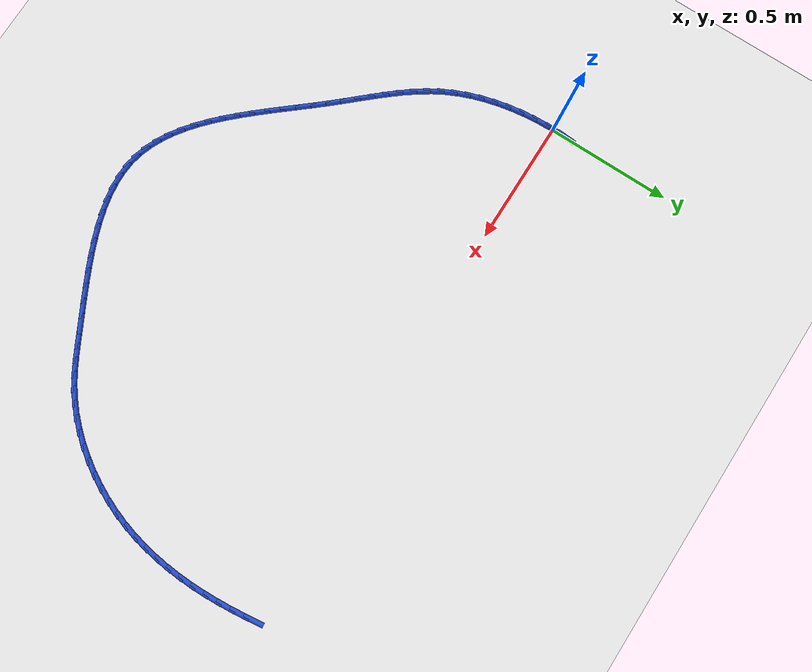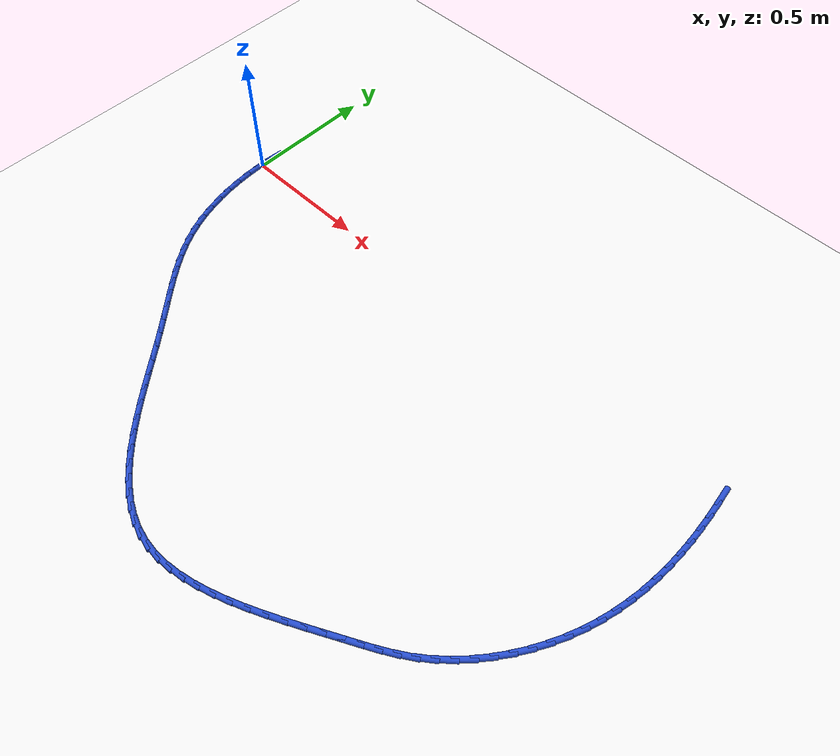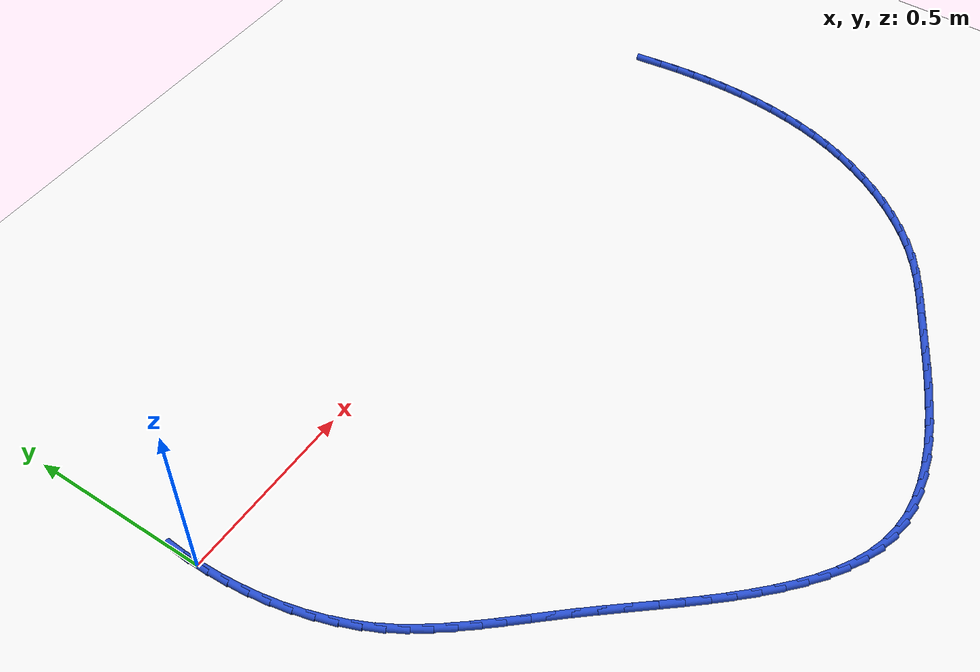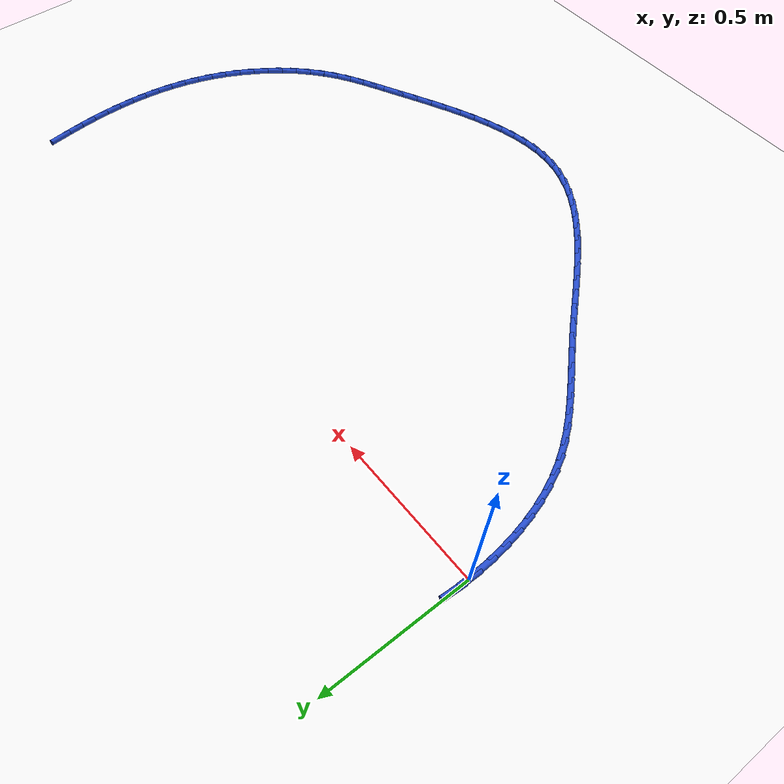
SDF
<sdf version="1.6">
 <world name="default">
  <model name="ground_plane">
   <static>1</static>
   <link name="link">
    <collision name="collision">
     <geometry><plane><normal>0 0 1</normal><size>100 100</size></plane></geometry>
     <surface><friction><ode><mu>100</mu><mu2>50</mu2></ode></friction></surface>
    </collision>
    <visual name="visual">
     <cast_shadows>0</cast_shadows>
     <geometry><plane><normal>0 0 1</normal><size>100 100</size></plane></geometry>
     <material>
      <script><uri>file://media/materials/scripts/gazebo.material</uri><name>Gazebo/WhiteGlow</name></script>
     </material>
    </visual>
   </link>
  </model>
  <model name="line">
   <link name="link_0">
    <pose>-3.122502256758253e-17 -1.1102230246251565e-16 0.01 0 1.57 1.5563504097494032</pose>
    <collision name="collision">
     <geometry><cylinder><radius>0.01</radius><length>0.08</length></cylinder></geometry>
    </collision>
    <visual name="visual">
     <material>
      <script><name>Gazebo/Blue</name><uri>file://media/materials/scripts/gazebo.material</uri></script>
     </material>
     <geometry><cylinder><radius>0.01</radius><length>0.08</length></cylinder></geometry>
    </visual>
   </link>
   <link name="link_1">
    <pose>0.0008178694669748708 0.05661202202502771 0.01 0 1.57 1.5072861251906564</pose>
    <collision name="collision">
     <geometry><cylinder><radius>0.01</radius><length>0.08</length></cylinder></geometry>
    </collision>
    <visual name="visual">
     <material>
      <script><name>Gazebo/Blue</name><uri>file://media/materials/scripts/gazebo.material</uri></script>
     </material>
     <geometry><cylinder><radius>0.01</radius><length>0.08</length></cylinder></geometry>
    </visual>
   </link>
   <link name="link_72">
    <pose>2.151646104769699 0.04974892645522249 0.01 0 1.57 -1.444014588436198</pose>
    <collision name="collision">
     <geometry><cylinder><radius>0.01</radius><length>0.08</length></cylinder></geometry>
    </collision>
    <visual name="visual">
     <material>
      <script><name>Gazebo/Blue</name><uri>file://media/materials/scripts/gazebo.material</uri></script>
     </material>
     <geometry><cylinder><radius>0.01</radius><length>0.08</length></cylinder></geometry>
    </visual>
   </link>
   <link name="link_73">
    <pose>2.1587093072180403 -0.005663771037293715 0.01 0 1.57 -1.470763106914792</pose>
    <collision name="collision">
     <geometry><cylinder><radius>0.01</radius><length>0.08</length></cylinder></geometry>
    </collision>
    <visual name="visual">
     <material>
      <script><name>Gazebo/Blue</name><uri>file://media/materials/scripts/gazebo.material</uri></script>
     </material>
     <geometry><cylinder><radius>0.01</radius><length>0.08</length></cylinder></geometry>
    </visual>
   </link>
   <link name="link_74">
    <pose>2.1642659916196547 -0.06102675387750114 0.01 0 1.57 -1.5006632906081057</pose>
    <collision name="collision">
     <geometry><cylinder><radius>0.01</radius><length>0.08</length></cylinder></geometry>
    </collision>
    <visual name="visual">
     <material>
      <script><name>Gazebo/Blue</name><uri>file://media/materials/scripts/gazebo.material</uri></script>
     </material>
     <geometry><cylinder><radius>0.01</radius><length>0.08</length></cylinder></geometry>
    </visual>
   </link>
   <link name="link_75">
    <pose>2.168147682136026 -0.11628351193172713 0.01 0 1.57 -1.5338178749238376</pose>
    <collision name="collision">
     <geometry><cylinder><radius>0.01</radius><length>0.08</length></cylinder></geometry>
    </collision>
    <visual name="visual">
     <material>
      <script><name>Gazebo/Blue</name><uri>file://media/materials/scripts/gazebo.material</uri></script>
     </material>
     <geometry><cylinder><radius>0.01</radius><length>0.08</length></cylinder></geometry>
    </visual>
   </link>
   <link name="link_76">
    <pose>2.17018590292864 -0.17137753506629827 0.01 0 1.57 -1.570317505207818</pose>
    <collision name="collision">
     <geometry><cylinder><radius>0.01</radius><length>0.08</length></cylinder></geometry>
    </collision>
    <visual name="visual">
     <material>
      <script><name>Gazebo/Blue</name><uri>file://media/materials/scripts/gazebo.material</uri></script>
     </material>
     <geometry><cylinder><radius>0.01</radius><length>0.08</length></cylinder></geometry>
    </visual>
   </link>
   <link name="link_77">
    <pose>2.1702121781589794 -0.22625231314754118 0.01 0 1.57 1.5313628465741125</pose>
    <collision name="collision">
     <geometry><cylinder><radius>0.01</radius><length>0.08</length></cylinder></geometry>
    </collision>
    <visual name="visual">
     <material>
      <script><name>Gazebo/Blue</name><uri>file://media/materials/scripts/gazebo.material</uri></script>
     </material>
     <geometry><cylinder><radius>0.01</radius><length>0.08</length></cylinder></geometry>
    </visual>
   </link>
   <link name="link_78">
    <pose>2.1680580319885303 -0.28085133604178336 0.01 0 1.57 1.488006223769343</pose>
    <collision name="collision">
     <geometry><cylinder><radius>0.01</radius><length>0.08</length></cylinder></geometry>
    </collision>
    <visual name="visual">
     <material>
      <script><name>Gazebo/Blue</name><uri>file://media/materials/scripts/gazebo.material</uri></script>
     </material>
     <geometry><cylinder><radius>0.01</radius><length>0.08</length></cylinder></geometry>
    </visual>
   </link>
   <link name="link_79">
    <pose>2.163554988578777 -0.33511809361534955 0.01 0 1.57 1.4412242133736035</pose>
    <collision name="collision">
     <geometry><cylinder><radius>0.01</radius><length>0.08</length></cylinder></geometry>
    </collision>
    <visual name="visual">
     <material>
      <script><name>Gazebo/Blue</name><uri>file://media/materials/scripts/gazebo.material</uri></script>
     </material>
     <geometry><cylinder><radius>0.01</radius><length>0.08</length></cylinder></geometry>
    </visual>
   </link>
   <link name="link_80">
    <pose>2.1565345720912052 -0.3889960757345674 0.01 0 1.57 1.391101717050056</pose>
    <collision name="collision">
     <geometry><cylinder><radius>0.01</radius><length>0.08</length></cylinder></geometry>
    </collision>
    <visual name="visual">
     <material>
      <script><name>Gazebo/Blue</name><uri>file://media/materials/scripts/gazebo.material</uri></script>
     </material>
     <geometry><cylinder><radius>0.01</radius><length>0.08</length></cylinder></geometry>
    </visual>
   </link>
   <link name="link_81">
    <pose>2.1468283066872993 -0.4424287722657633 0.01 0 1.57 1.3378042926409845</pose>
    <collision name="collision">
     <geometry><cylinder><radius>0.01</radius><length>0.08</length></cylinder></geometry>
    </collision>
    <visual name="visual">
     <material>
      <script><name>Gazebo/Blue</name><uri>file://media/materials/scripts/gazebo.material</uri></script>
     </material>
     <geometry><cylinder><radius>0.01</radius><length>0.08</length></cylinder></geometry>
    </visual>
   </link>
   <link name="link_82">
    <pose>2.1342677165285435 -0.49535967307526485 0.01 0 1.57 1.2815900650292007</pose>
    <collision name="collision">
     <geometry><cylinder><radius>0.01</radius><length>0.08</length></cylinder></geometry>
    </collision>
    <visual name="visual">
     <material>
      <script><name>Gazebo/Blue</name><uri>file://media/materials/scripts/gazebo.material</uri></script>
     </material>
     <geometry><cylinder><radius>0.01</radius><length>0.08</length></cylinder></geometry>
    </visual>
   </link>
   <link name="link_83">
    <pose>2.1186843257764227 -0.5477322680293968 0.01 0 1.57 1.2228694130776139</pose>
    <collision name="collision">
     <geometry><cylinder><radius>0.01</radius><length>0.08</length></cylinder></geometry>
    </collision>
    <visual name="visual">
     <material>
      <script><name>Gazebo/Blue</name><uri>file://media/materials/scripts/gazebo.material</uri></script>
     </material>
     <geometry><cylinder><radius>0.01</radius><length>0.08</length></cylinder></geometry>
    </visual>
   </link>
   <link name="link_84">
    <pose>2.0999144495666404 -0.5994854029168908 0.01 0 1.57 1.1633556230460207</pose>
    <collision name="collision">
     <geometry><cylinder><radius>0.01</radius><length>0.08</length></cylinder></geometry>
    </collision>
    <visual name="visual">
     <material>
      <script><name>Gazebo/Blue</name><uri>file://media/materials/scripts/gazebo.material</uri></script>
     </material>
     <geometry><cylinder><radius>0.01</radius><length>0.08</length></cylinder></geometry>
    </visual>
   </link>
   <link name="link_85">
    <pose>2.0779277573658463 -0.6504286579882926 0.01 0 1.57 1.1041608790098507</pose>
    <collision name="collision">
     <geometry><cylinder><radius>0.01</radius><length>0.08</length></cylinder></geometry>
    </collision>
    <visual name="visual">
     <material>
      <script><name>Gazebo/Blue</name><uri>file://media/materials/scripts/gazebo.material</uri></script>
     </material>
     <geometry><cylinder><radius>0.01</radius><length>0.08</length></cylinder></geometry>
    </visual>
   </link>
   <link name="link_86">
    <pose>2.05284157107894 -0.7002284882446069 0.01 0 1.57 1.04462814469511</pose>
    <collision name="collision">
     <geometry><cylinder><radius>0.01</radius><length>0.08</length></cylinder></geometry>
    </collision>
    <visual name="visual">
     <material>
      <script><name>Gazebo/Blue</name><uri>file://media/materials/scripts/gazebo.material</uri></script>
     </material>
     <geometry><cylinder><radius>0.01</radius><length>0.08</length></cylinder></geometry>
    </visual>
   </link>
   <link name="link_87">
    <pose>2.0247808725090457 -0.7485439236496513 0.01 0 1.57 0.9840329945887957</pose>
    <collision name="collision">
     <geometry><cylinder><radius>0.01</radius><length>0.08</length></cylinder></geometry>
    </collision>
    <visual name="visual">
     <material>
      <script><name>Gazebo/Blue</name><uri>file://media/materials/scripts/gazebo.material</uri></script>
     </material>
     <geometry><cylinder><radius>0.01</radius><length>0.08</length></cylinder></geometry>
    </visual>
   </link>
   <link name="link_88">
    <pose>1.9938706434592897 -0.7950339941672393 0.01 0 1.57 0.921659374699507</pose>
    <collision name="collision">
     <geometry><cylinder><radius>0.01</radius><length>0.08</length></cylinder></geometry>
    </collision>
    <visual name="visual">
     <material>
      <script><name>Gazebo/Blue</name><uri>file://media/materials/scripts/gazebo.material</uri></script>
     </material>
     <geometry><cylinder><radius>0.01</radius><length>0.08</length></cylinder></geometry>
    </visual>
   </link>
   <link name="link_89">
    <pose>1.9602358657327956 -0.8393577297611884 0.01 0 1.57 0.8567952483908179</pose>
    <collision name="collision">
     <geometry><cylinder><radius>0.01</radius><length>0.08</length></cylinder></geometry>
    </collision>
    <visual name="visual">
     <material>
      <script><name>Gazebo/Blue</name><uri>file://media/materials/scripts/gazebo.material</uri></script>
     </material>
     <geometry><cylinder><radius>0.01</radius><length>0.08</length></cylinder></geometry>
    </visual>
   </link>
   <link name="link_90">
    <pose>1.9240015211326877 -0.8811741603953142 0.01 0 1.57 0.7887353767359643</pose>
    <collision name="collision">
     <geometry><cylinder><radius>0.01</radius><length>0.08</length></cylinder></geometry>
    </collision>
    <visual name="visual">
     <material>
      <script><name>Gazebo/Blue</name><uri>file://media/materials/scripts/gazebo.material</uri></script>
     </material>
     <geometry><cylinder><radius>0.01</radius><length>0.08</length></cylinder></geometry>
    </visual>
   </link>
   <link name="link_91">
    <pose>1.8852925914620913 -0.9201423160334332 0.01 0 1.57 0.7167944112977853</pose>
    <collision name="collision">
     <geometry><cylinder><radius>0.01</radius><length>0.08</length></cylinder></geometry>
    </collision>
    <visual name="visual">
     <material>
      <script><name>Gazebo/Blue</name><uri>file://media/materials/scripts/gazebo.material</uri></script>
     </material>
     <geometry><cylinder><radius>0.01</radius><length>0.08</length></cylinder></geometry>
    </visual>
   </link>
   <link name="link_92">
    <pose>1.8442340585241315 -0.9559212266393604 0.01 0 1.57 0.6404142741650419</pose>
    <collision name="collision">
     <geometry><cylinder><radius>0.01</radius><length>0.08</length></cylinder></geometry>
    </collision>
    <visual name="visual">
     <material>
      <script><name>Gazebo/Blue</name><uri>file://media/materials/scripts/gazebo.material</uri></script>
     </material>
     <geometry><cylinder><radius>0.01</radius><length>0.08</length></cylinder></geometry>
    </visual>
   </link>
   <link name="link_93">
    <pose>1.8009513348215933 -0.9881749906177477 0.01 0 1.57 0.5677001501802087</pose>
    <collision name="collision">
     <geometry><cylinder><radius>0.01</radius><length>0.08</length></cylinder></geometry>
    </collision>
    <visual name="visual">
     <material>
      <script><name>Gazebo/Blue</name><uri>file://media/materials/scripts/gazebo.material</uri></script>
     </material>
     <geometry><cylinder><radius>0.01</radius><length>0.08</length></cylinder></geometry>
    </visual>
   </link>
   <link name="link_94">
    <pose>1.7556140357700243 -1.0170878828886936 0.01 0 1.57 0.5156632623644138</pose>
    <collision name="collision">
     <geometry><cylinder><radius>0.01</radius><length>0.08</length></cylinder></geometry>
    </collision>
    <visual name="visual">
     <material>
      <script><name>Gazebo/Blue</name><uri>file://media/materials/scripts/gazebo.material</uri></script>
     </material>
     <geometry><cylinder><radius>0.01</radius><length>0.08</length></cylinder></geometry>
    </visual>
   </link>
   <link name="link_95">
    <pose>1.708473668485252 -1.0438078736726466 0.01 0 1.57 0.4869982132189014</pose>
    <collision name="collision">
     <geometry><cylinder><radius>0.01</radius><length>0.08</length></cylinder></geometry>
    </collision>
    <visual name="visual">
     <material>
      <script><name>Gazebo/Blue</name><uri>file://media/materials/scripts/gazebo.material</uri></script>
     </material>
     <geometry><cylinder><radius>0.01</radius><length>0.08</length></cylinder></geometry>
    </visual>
   </link>
   <link name="link_96">
    <pose>1.659790619229135 -1.0695874223052428 0.01 0 1.57 0.4807940565884581</pose>
    <collision name="collision">
     <geometry><cylinder><radius>0.01</radius><length>0.08</length></cylinder></geometry>
    </collision>
    <visual name="visual">
     <material>
      <script><name>Gazebo/Blue</name><uri>file://media/materials/scripts/gazebo.material</uri></script>
     </material>
     <geometry><cylinder><radius>0.01</radius><length>0.08</length></cylinder></geometry>
    </visual>
   </link>
   <link name="link_97">
    <pose>1.609824407425976 -1.0956508244897654 0.01 0 1.57 0.4828846300810838</pose>
    <collision name="collision">
     <geometry><cylinder><radius>0.01</radius><length>0.08</length></cylinder></geometry>
    </collision>
    <visual name="visual">
     <material>
      <script><name>Gazebo/Blue</name><uri>file://media/materials/scripts/gazebo.material</uri></script>
     </material>
     <geometry><cylinder><radius>0.01</radius><length>0.08</length></cylinder></geometry>
    </visual>
   </link>
   <link name="link_98">
    <pose>1.558809156118729 -1.1223972451517445 0.01 0 1.57 0.4783689100006593</pose>
    <collision name="collision">
     <geometry><cylinder><radius>0.01</radius><length>0.08</length></cylinder></geometry>
    </collision>
    <visual name="visual">
     <material>
      <script><name>Gazebo/Blue</name><uri>file://media/materials/scripts/gazebo.material</uri></script>
     </material>
     <geometry><cylinder><radius>0.01</radius><length>0.08</length></cylinder></geometry>
    </visual>
   </link>
   <link name="link_99">
    <pose>1.5069501286710967 -1.1492881955699499 0.01 0 1.57 0.46663983455780556</pose>
    <collision name="collision">
     <geometry><cylinder><radius>0.01</radius><length>0.08</length></cylinder></geometry>
    </collision>
    <visual name="visual">
     <material>
      <script><name>Gazebo/Blue</name><uri>file://media/materials/scripts/gazebo.material</uri></script>
     </material>
     <geometry><cylinder><radius>0.01</radius><length>0.08</length></cylinder></geometry>
    </visual>
   </link>
   <link name="link_100">
    <pose>1.4544510253991452 -1.1757344034609394 0.01 0 1.57 0.44756854116416633</pose>
    <collision name="collision">
     <geometry><cylinder><radius>0.01</radius><length>0.08</length></cylinder></geometry>
    </collision>
    <visual name="visual">
     <material>
      <script><name>Gazebo/Blue</name><uri>file://media/materials/scripts/gazebo.material</uri></script>
     </material>
     <geometry><cylinder><radius>0.01</radius><length>0.08</length></cylinder></geometry>
    </visual>
   </link>
   <link name="link_101">
    <pose>1.401515546618943 -1.2011465965412702 0.01 0 1.57 0.42071275934590985</pose>
    <collision name="collision">
     <geometry><cylinder><radius>0.01</radius><length>0.08</length></cylinder></geometry>
    </collision>
    <visual name="visual">
     <material>
      <script><name>Gazebo/Blue</name><uri>file://media/materials/scripts/gazebo.material</uri></script>
     </material>
     <geometry><cylinder><radius>0.01</radius><length>0.08</length></cylinder></geometry>
    </visual>
   </link>
   <link name="link_102">
    <pose>1.348347392646556 -1.2249355025275006 0.01 0 1.57 0.38531802189029607</pose>
    <collision name="collision">
     <geometry><cylinder><radius>0.01</radius><length>0.08</length></cylinder></geometry>
    </collision>
    <visual name="visual">
     <material>
      <script><name>Gazebo/Blue</name><uri>file://media/materials/scripts/gazebo.material</uri></script>
     </material>
     <geometry><cylinder><radius>0.01</radius><length>0.08</length></cylinder></geometry>
    </visual>
   </link>
   <link name="link_103">
    <pose>1.2951502637980492 -1.2465118491361875 0.01 0 1.57 0.34031066657514136</pose>
    <collision name="collision">
     <geometry><cylinder><radius>0.01</radius><length>0.08</length></cylinder></geometry>
    </collision>
    <visual name="visual">
     <material>
      <script><name>Gazebo/Blue</name><uri>file://media/materials/scripts/gazebo.material</uri></script>
     </material>
     <geometry><cylinder><radius>0.01</radius><length>0.08</length></cylinder></geometry>
    </visual>
   </link>
   <link name="link_104">
    <pose>1.2421278603894907 -1.2652863640838896 0.01 0 1.57 0.2843002725360842</pose>
    <collision name="collision">
     <geometry><cylinder><radius>0.01</radius><length>0.08</length></cylinder></geometry>
    </collision>
    <visual name="visual">
     <material>
      <script><name>Gazebo/Blue</name><uri>file://media/materials/scripts/gazebo.material</uri></script>
     </material>
     <geometry><cylinder><radius>0.01</radius><length>0.08</length></cylinder></geometry>
    </visual>
   </link>
   <link name="link_105">
    <pose>1.1894838827369467 -1.2806697750871636 0.01 0 1.57 0.21562356726987048</pose>
    <collision name="collision">
     <geometry><cylinder><radius>0.01</radius><length>0.08</length></cylinder></geometry>
    </collision>
    <visual name="visual">
     <material>
      <script><name>Gazebo/Blue</name><uri>file://media/materials/scripts/gazebo.material</uri></script>
     </material>
     <geometry><cylinder><radius>0.01</radius><length>0.08</length></cylinder></geometry>
    </visual>
   </link>
   <link name="link_106">
    <pose>1.1374220311564844 -1.292072809862568 0.01 0 1.57 0.13248605458208332</pose>
    <collision name="collision">
     <geometry><cylinder><radius>0.01</radius><length>0.08</length></cylinder></geometry>
    </collision>
    <visual name="visual">
     <material>
      <script><name>Gazebo/Blue</name><uri>file://media/materials/scripts/gazebo.material</uri></script>
     </material>
     <geometry><cylinder><radius>0.01</radius><length>0.08</length></cylinder></geometry>
    </visual>
   </link>
   <link name="link_107">
    <pose>1.0861460059641697 -1.2989061961266601 0.01 0 1.57 0.033286211086031164</pose>
    <collision name="collision">
     <geometry><cylinder><radius>0.01</radius><length>0.08</length></cylinder></geometry>
    </collision>
    <visual name="visual">
     <material>
      <script><name>Gazebo/Blue</name><uri>file://media/materials/scripts/gazebo.material</uri></script>
     </material>
     <geometry><cylinder><radius>0.01</radius><length>0.08</length></cylinder></geometry>
    </visual>
   </link>
   <link name="link_108">
    <pose>1.0358595074760688 -1.3005806615959972 0.01 0 1.57 -0.08278967656308923</pose>
    <collision name="collision">
     <geometry><cylinder><radius>0.01</radius><length>0.08</length></cylinder></geometry>
    </collision>
    <visual name="visual">
     <material>
      <script><name>Gazebo/Blue</name><uri>file://media/materials/scripts/gazebo.material</uri></script>
     </material>
     <geometry><cylinder><radius>0.01</radius><length>0.08</length></cylinder></geometry>
    </visual>
   </link>
   <link name="link_109">
    <pose>0.9867662360082485 -1.2965069339871378 0.01 0 1.57 -0.21207618108106815</pose>
    <collision name="collision">
     <geometry><cylinder><radius>0.01</radius><length>0.08</length></cylinder></geometry>
    </collision>
    <visual name="visual">
     <material>
      <script><name>Gazebo/Blue</name><uri>file://media/materials/scripts/gazebo.material</uri></script>
     </material>
     <geometry><cylinder><radius>0.01</radius><length>0.08</length></cylinder></geometry>
    </visual>
   </link>
   <link name="link_110">
    <pose>0.939033765653102 -1.2862294691709102 0.01 0 1.57 -0.33578276563910103</pose>
    <collision name="collision">
     <geometry><cylinder><radius>0.01</radius><length>0.08</length></cylinder></geometry>
    </collision>
    <visual name="visual">
     <material>
      <script><name>Gazebo/Blue</name><uri>file://media/materials/scripts/gazebo.material</uri></script>
     </material>
     <geometry><cylinder><radius>0.01</radius><length>0.08</length></cylinder></geometry>
    </visual>
   </link>
   <link name="link_111">
    <pose>0.8926293185182754 -1.2700343643633933 0.01 0 1.57 -0.4454570333272805</pose>
    <collision name="collision">
     <geometry><cylinder><radius>0.01</radius><length>0.08</length></cylinder></geometry>
    </collision>
    <visual name="visual">
     <material>
      <script><name>Gazebo/Blue</name><uri>file://media/materials/scripts/gazebo.material</uri></script>
     </material>
     <geometry><cylinder><radius>0.01</radius><length>0.08</length></cylinder></geometry>
    </visual>
   </link>
   <link name="link_112">
    <pose>0.8474510559403053 -1.248463358486715 0.01 0 1.57 -0.5399610551770997</pose>
    <collision name="collision">
     <geometry><cylinder><radius>0.01</radius><length>0.08</length></cylinder></geometry>
    </collision>
    <visual name="visual">
     <material>
      <script><name>Gazebo/Blue</name><uri>file://media/materials/scripts/gazebo.material</uri></script>
     </material>
     <geometry><cylinder><radius>0.01</radius><length>0.08</length></cylinder></geometry>
    </visual>
   </link>
   <link name="link_113">
    <pose>0.8033970747526046 -1.2220584292336982 0.01 0 1.57 -0.6196339443404311</pose>
    <collision name="collision">
     <geometry><cylinder><radius>0.01</radius><length>0.08</length></cylinder></geometry>
    </collision>
    <visual name="visual">
     <material>
      <script><name>Gazebo/Blue</name><uri>file://media/materials/scripts/gazebo.material</uri></script>
     </material>
     <geometry><cylinder><radius>0.01</radius><length>0.08</length></cylinder></geometry>
    </visual>
   </link>
   <link name="link_114">
    <pose>0.7603654717885875 -1.1913615542971667 0.01 0 1.57 -0.6856197409459353</pose>
    <collision name="collision">
     <geometry><cylinder><radius>0.01</radius><length>0.08</length></cylinder></geometry>
    </collision>
    <visual name="visual">
     <material>
      <script><name>Gazebo/Blue</name><uri>file://media/materials/scripts/gazebo.material</uri></script>
     </material>
     <geometry><cylinder><radius>0.01</radius><length>0.08</length></cylinder></geometry>
    </visual>
   </link>
   <link name="link_115">
    <pose>0.7182543438816671 -1.1569147113699436 0.01 0 1.57 -0.7393529223043904</pose>
    <collision name="collision">
     <geometry><cylinder><radius>0.01</radius><length>0.08</length></cylinder></geometry>
    </collision>
    <visual name="visual">
     <material>
      <script><name>Gazebo/Blue</name><uri>file://media/materials/scripts/gazebo.material</uri></script>
     </material>
     <geometry><cylinder><radius>0.01</radius><length>0.08</length></cylinder></geometry>
    </visual>
   </link>
   <link name="link_116">
    <pose>0.6769617878652572 -1.1192598781448524 0.01 0 1.57 -0.7822454944635462</pose>
    <collision name="collision">
     <geometry><cylinder><radius>0.01</radius><length>0.08</length></cylinder></geometry>
    </collision>
    <visual name="visual">
     <material>
      <script><name>Gazebo/Blue</name><uri>file://media/materials/scripts/gazebo.material</uri></script>
     </material>
     <geometry><cylinder><radius>0.01</radius><length>0.08</length></cylinder></geometry>
    </visual>
   </link>
   <link name="link_117">
    <pose>0.6363859005727699 -1.0789390323147152 0.01 0 1.57 -0.8155295521107141</pose>
    <collision name="collision">
     <geometry><cylinder><radius>0.01</radius><length>0.08</length></cylinder></geometry>
    </collision>
    <visual name="visual">
     <material>
      <script><name>Gazebo/Blue</name><uri>file://media/materials/scripts/gazebo.material</uri></script>
     </material>
     <geometry><cylinder><radius>0.01</radius><length>0.08</length></cylinder></geometry>
    </visual>
   </link>
   <link name="link_118">
    <pose>0.59642477883762 -1.0364941515723567 0.01 0 1.57 -0.8401940215905255</pose>
    <collision name="collision">
     <geometry><cylinder><radius>0.01</radius><length>0.08</length></cylinder></geometry>
    </collision>
    <visual name="visual">
     <material>
      <script><name>Gazebo/Blue</name><uri>file://media/materials/scripts/gazebo.material</uri></script>
     </material>
     <geometry><cylinder><radius>0.01</radius><length>0.08</length></cylinder></geometry>
    </visual>
   </link>
   <link name="link_119">
    <pose>0.5569765194932207 -0.9924672136105995 0.01 0 1.57 -0.8569690233059828</pose>
    <collision name="collision">
     <geometry><cylinder><radius>0.01</radius><length>0.08</length></cylinder></geometry>
    </collision>
    <visual name="visual">
     <material>
      <script><name>Gazebo/Blue</name><uri>file://media/materials/scripts/gazebo.material</uri></script>
     </material>
     <geometry><cylinder><radius>0.01</radius><length>0.08</length></cylinder></geometry>
    </visual>
   </link>
   <link name="link_120">
    <pose>0.5179392193729854 -0.9474001961222677 0.01 0 1.57 -0.8663291133465866</pose>
    <collision name="collision">
     <geometry><cylinder><radius>0.01</radius><length>0.08</length></cylinder></geometry>
    </collision>
    <visual name="visual">
     <material>
      <script><name>Gazebo/Blue</name><uri>file://media/materials/scripts/gazebo.material</uri></script>
     </material>
     <geometry><cylinder><radius>0.01</radius><length>0.08</length></cylinder></geometry>
    </visual>
   </link>
   <link name="link_121">
    <pose>0.4792109753103269 -0.9018350768001829 0.01 0 1.57 -0.8684995067455547</pose>
    <collision name="collision">
     <geometry><cylinder><radius>0.01</radius><length>0.08</length></cylinder></geometry>
    </collision>
    <visual name="visual">
     <material>
      <script><name>Gazebo/Blue</name><uri>file://media/materials/scripts/gazebo.material</uri></script>
     </material>
     <geometry><cylinder><radius>0.01</radius><length>0.08</length></cylinder></geometry>
    </visual>
   </link>
   <link name="link_122">
    <pose>0.4406898841386589 -0.8563138333371696 0.01 0 1.57 -0.8634570159422604</pose>
    <collision name="collision">
     <geometry><cylinder><radius>0.01</radius><length>0.08</length></cylinder></geometry>
    </collision>
    <visual name="visual">
     <material>
      <script><name>Gazebo/Blue</name><uri>file://media/materials/scripts/gazebo.material</uri></script>
     </material>
     <geometry><cylinder><radius>0.01</radius><length>0.08</length></cylinder></geometry>
    </visual>
   </link>
   <link name="link_123">
    <pose>0.40227404269139533 -0.8113784434260513 0.01 0 1.57 -0.8510292798887059</pose>
    <collision name="collision">
     <geometry><cylinder><radius>0.01</radius><length>0.08</length></cylinder></geometry>
    </collision>
    <visual name="visual">
     <material>
      <script><name>Gazebo/Blue</name><uri>file://media/materials/scripts/gazebo.material</uri></script>
     </material>
     <geometry><cylinder><radius>0.01</radius><length>0.08</length></cylinder></geometry>
    </visual>
   </link>
   <link name="link_124">
    <pose>0.36386466586439464 -0.767564924580417 0.01 0 1.57 -0.8375013348830648</pose>
    <collision name="collision">
     <geometry><cylinder><radius>0.01</radius><length>0.08</length></cylinder></geometry>
    </collision>
    <visual name="visual">
     <material>
      <script><name>Gazebo/Blue</name><uri>file://media/materials/scripts/gazebo.material</uri></script>
     </material>
     <geometry><cylinder><radius>0.01</radius><length>0.08</length></cylinder></geometry>
    </visual>
   </link>
   <link name="link_125">
    <pose>0.32555583979812563 -0.7250406207522714 0.01 0 1.57 -0.83361021065233</pose>
    <collision name="collision">
     <geometry><cylinder><radius>0.01</radius><length>0.08</length></cylinder></geometry>
    </collision>
    <visual name="visual">
     <material>
      <script><name>Gazebo/Blue</name><uri>file://media/materials/scripts/gazebo.material</uri></script>
     </material>
     <geometry><cylinder><radius>0.01</radius><length>0.08</length></cylinder></geometry>
    </visual>
   </link>
   <link name="link_126">
    <pose>0.28774397723059014 -0.6833949783241806 0.01 0 1.57 -0.840844629923317</pose>
    <collision name="collision">
     <geometry><cylinder><radius>0.01</radius><length>0.08</length></cylinder></geometry>
    </collision>
    <visual name="visual">
     <material>
      <script><name>Gazebo/Blue</name><uri>file://media/materials/scripts/gazebo.material</uri></script>
     </material>
     <geometry><cylinder><radius>0.01</radius><length>0.08</length></cylinder></geometry>
    </visual>
   </link>
   <link name="link_127">
    <pose>0.2508518961276838 -0.6421669700612956 0.01 0 1.57 -0.859744787187242</pose>
    <collision name="collision">
     <geometry><cylinder><radius>0.01</radius><length>0.08</length></cylinder></geometry>
    </collision>
    <visual name="visual">
     <material>
      <script><name>Gazebo/Blue</name><uri>file://media/materials/scripts/gazebo.material</uri></script>
     </material>
     <geometry><cylinder><radius>0.01</radius><length>0.08</length></cylinder></geometry>
    </visual>
   </link>
   <link name="link_128">
    <pose>0.21530241445530002 -0.6008955687287659 0.01 0 1.57 -0.8907735916102386</pose>
    <collision name="collision">
     <geometry><cylinder><radius>0.01</radius><length>0.08</length></cylinder></geometry>
    </collision>
    <visual name="visual">
     <material>
      <script><name>Gazebo/Blue</name><uri>file://media/materials/scripts/gazebo.material</uri></script>
     </material>
     <geometry><cylinder><radius>0.01</radius><length>0.08</length></cylinder></geometry>
    </visual>
   </link>
   <link name="link_129">
    <pose>0.1815183501793329 -0.5591197470917415 0.01 0 1.57 -0.9342206919306248</pose>
    <collision name="collision">
     <geometry><cylinder><radius>0.01</radius><length>0.08</length></cylinder></geometry>
    </collision>
    <visual name="visual">
     <material>
      <script><name>Gazebo/Blue</name><uri>file://media/materials/scripts/gazebo.material</uri></script>
     </material>
     <geometry><cylinder><radius>0.01</radius><length>0.08</length></cylinder></geometry>
    </visual>
   </link>
   <link name="link_130">
    <pose>0.14992252126567654 -0.5163784779153717 0.01 0 1.57 -0.9900448218890617</pose>
    <collision name="collision">
     <geometry><cylinder><radius>0.01</radius><length>0.08</length></cylinder></geometry>
    </collision>
    <visual name="visual">
     <material>
      <script><name>Gazebo/Blue</name><uri>file://media/materials/scripts/gazebo.material</uri></script>
     </material>
     <geometry><cylinder><radius>0.01</radius><length>0.08</length></cylinder></geometry>
    </visual>
   </link>
   <link name="link_131">
    <pose>0.12093774568022464 -0.4722107339648059 0.01 0 1.57 -1.0576563914789088</pose>
    <collision name="collision">
     <geometry><cylinder><radius>0.01</radius><length>0.08</length></cylinder></geometry>
    </collision>
    <visual name="visual">
     <material>
      <script><name>Gazebo/Blue</name><uri>file://media/materials/scripts/gazebo.material</uri></script>
     </material>
     <geometry><cylinder><radius>0.01</radius><length>0.08</length></cylinder></geometry>
    </visual>
   </link>
   <link name="link_132">
    <pose>0.09498645375637348 -0.42615602485897497 0.01 0 1.57 -1.1319351739205303</pose>
    <collision name="collision">
     <geometry><cylinder><radius>0.01</radius><length>0.08</length></cylinder></geometry>
    </collision>
    <visual name="visual">
     <material>
      <script><name>Gazebo/Blue</name><uri>file://media/materials/scripts/gazebo.material</uri></script>
     </material>
     <geometry><cylinder><radius>0.01</radius><length>0.08</length></cylinder></geometry>
    </visual>
   </link>
   <link name="link_133">
    <pose>0.07235525550772934 -0.3779419653221686 0.01 0 1.57 -1.2026040362556596</pose>
    <collision name="collision">
     <geometry><cylinder><radius>0.01</radius><length>0.08</length></cylinder></geometry>
    </collision>
    <visual name="visual">
     <material>
      <script><name>Gazebo/Blue</name><uri>file://media/materials/scripts/gazebo.material</uri></script>
     </material>
     <geometry><cylinder><radius>0.01</radius><length>0.08</length></cylinder></geometry>
    </visual>
   </link>
   <link name="link_134">
    <pose>0.052995824391878346 -0.3277600423200154 0.01 0 1.57 -1.2684086477368275</pose>
    <collision name="collision">
     <geometry><cylinder><radius>0.01</radius><length>0.08</length></cylinder></geometry>
    </collision>
    <visual name="visual">
     <material>
      <script><name>Gazebo/Blue</name><uri>file://media/materials/scripts/gazebo.material</uri></script>
     </material>
     <geometry><cylinder><radius>0.01</radius><length>0.08</length></cylinder></geometry>
    </visual>
   </link>
   <link name="link_135">
    <pose>0.03680911848943758 -0.2758719813608211 0.01 0 1.57 -1.3297055244723837</pose>
    <collision name="collision">
     <geometry><cylinder><radius>0.01</radius><length>0.08</length></cylinder></geometry>
    </collision>
    <visual name="visual">
     <material>
      <script><name>Gazebo/Blue</name><uri>file://media/materials/scripts/gazebo.material</uri></script>
     </material>
     <geometry><cylinder><radius>0.01</radius><length>0.08</length></cylinder></geometry>
    </visual>
   </link>
   <link name="link_136">
    <pose>0.023696095881024934 -0.2225395079528947 0.01 0 1.57 -1.3869233327272645</pose>
    <collision name="collision">
     <geometry><cylinder><radius>0.01</radius><length>0.08</length></cylinder></geometry>
    </collision>
    <visual name="visual">
     <material>
      <script><name>Gazebo/Blue</name><uri>file://media/materials/scripts/gazebo.material</uri></script>
     </material>
     <geometry><cylinder><radius>0.01</radius><length>0.08</length></cylinder></geometry>
    </visual>
   </link>
   <link name="link_137">
    <pose>0.013557714647257496 -0.16802434760454246 0.01 0 1.57 -1.4405265436298502</pose>
    <collision name="collision">
     <geometry><cylinder><radius>0.01</radius><length>0.08</length></cylinder></geometry>
    </collision>
    <visual name="visual">
     <material>
      <script><name>Gazebo/Blue</name><uri>file://media/materials/scripts/gazebo.material</uri></script>
     </material>
     <geometry><cylinder><radius>0.01</radius><length>0.08</length></cylinder></geometry>
    </visual>
   </link>
   <link name="link_138">
    <pose>0.0062949328687526155 -0.11258822582407138 0.01 0 1.57 -1.4909912173953723</pose>
    <collision name="collision">
     <geometry><cylinder><radius>0.01</radius><length>0.08</length></cylinder></geometry>
    </collision>
    <visual name="visual">
     <material>
      <script><name>Gazebo/Blue</name><uri>file://media/materials/scripts/gazebo.material</uri></script>
     </material>
     <geometry><cylinder><radius>0.01</radius><length>0.08</length></cylinder></geometry>
    </visual>
   </link>
   <link name="link_139">
    <pose>0.0018087086261276584 -0.05649286811978859 0.01 0 1.57 -1.5387906762848018</pose>
    <collision name="collision">
     <geometry><cylinder><radius>0.01</radius><length>0.08</length></cylinder></geometry>
    </collision>
    <visual name="visual">
     <material>
      <script><name>Gazebo/Blue</name><uri>file://media/materials/scripts/gazebo.material</uri></script>
     </material>
     <geometry><cylinder><radius>0.01</radius><length>0.08</length></cylinder></geometry>
    </visual>
   </link>
   <link name="link_140">
    <pose>-1.214306433183765e-17 -2.7755575615628914e-16 0.01 0 1.57 1.5572039557264417</pose>
    <collision name="collision">
     <geometry><cylinder><radius>0.01</radius><length>0.08</length></cylinder></geometry>
    </collision>
    <visual name="visual">
     <material>
      <script><name>Gazebo/Blue</name><uri>file://media/materials/scripts/gazebo.material</uri></script>
     </material>
     <geometry><cylinder><radius>0.01</radius><length>0.08</length></cylinder></geometry>
    </visual>
   </link>
  </model>
 </world>
</sdf>
